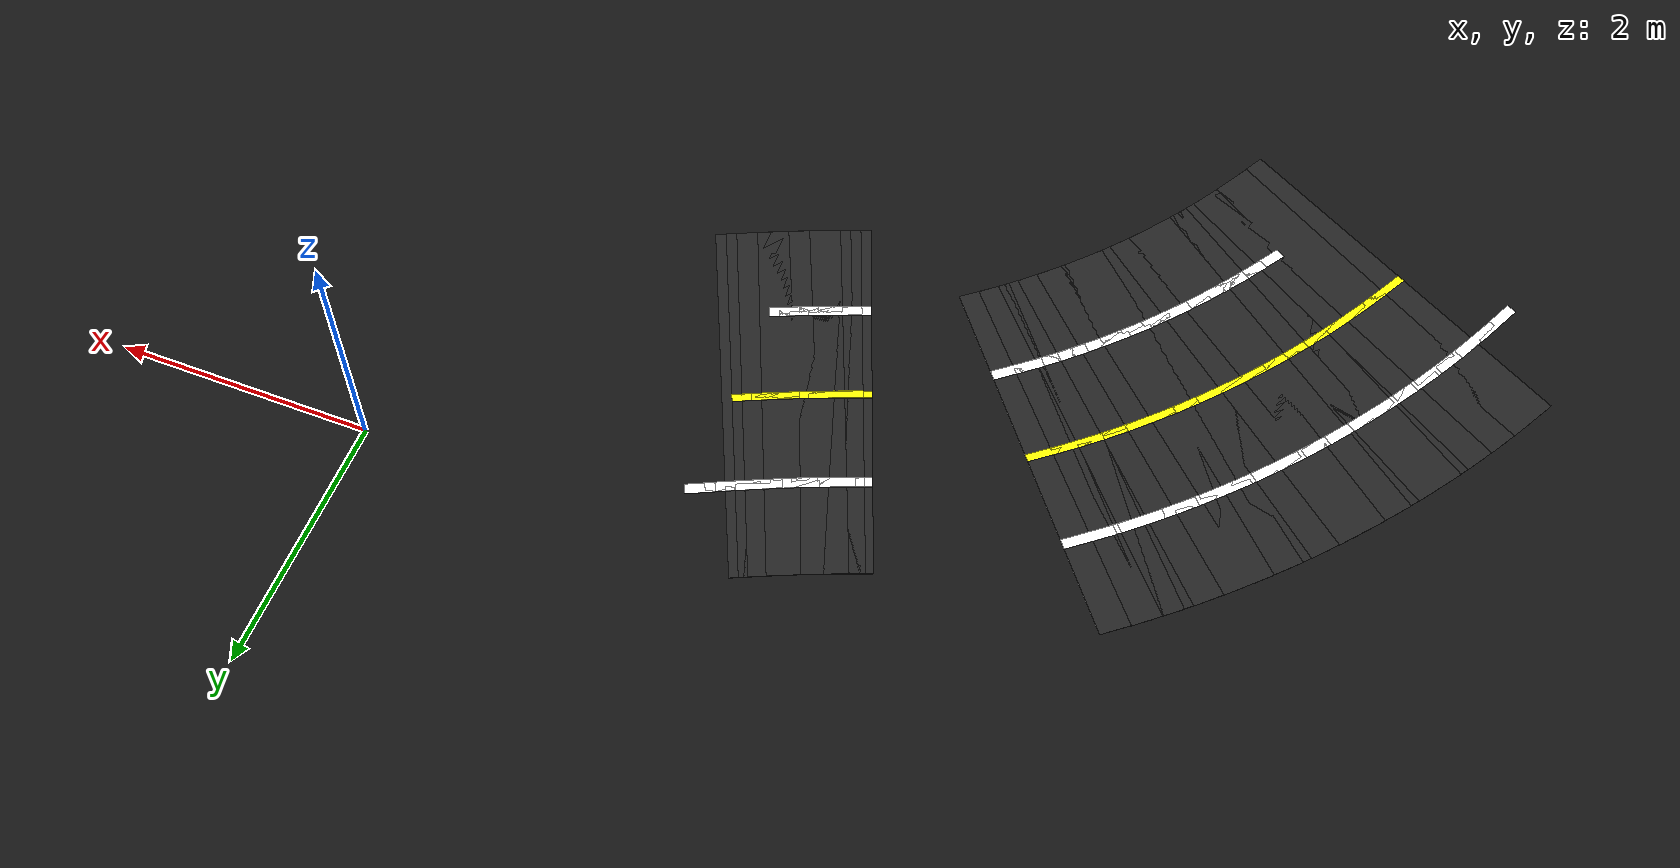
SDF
<sdf version="1.6">
 <world name="figure8_world">
  <model name="ground_plane">
   <static>true</static>
   <link name="link">
    <collision name="collision">
     <geometry><plane><normal>0 0 1</normal><size>120 120</size></plane></geometry>
    </collision>
    <visual name="visual">
     <geometry><plane><normal>0 0 1</normal><size>120 120</size></plane></geometry>
     <material><ambient>0.08 0.08 0.08 1</ambient><diffuse>0.08 0.08 0.08 1</diffuse></material>
    </visual>
   </link>
  </model>
  <model name="seg_01305">
   <static>true</static>
   <pose>-7.4463 -3.9483 0.0030 0 0 1.1257</pose>
   <link name="link">
    <collision name="collision"><geometry><box><size>0.4000 0.0800 0.002</size></box></geometry></collision>
    <visual name="visual">
     <geometry><box><size>0.4000 0.0800 0.002</size></box></geometry>
     <material><ambient>1 1 1 1</ambient><diffuse>1 1 1 1</diffuse></material>
    </visual>
   </link>
  </model>
  <model name="seg_01309">
   <static>true</static>
   <pose>-7.3508 -3.7546 0.0030 0 0 1.0996</pose>
   <link name="link">
    <collision name="collision"><geometry><box><size>0.4000 0.0800 0.002</size></box></geometry></collision>
    <visual name="visual">
     <geometry><box><size>0.4000 0.0800 0.002</size></box></geometry>
     <material><ambient>1 1 1 1</ambient><diffuse>1 1 1 1</diffuse></material>
    </visual>
   </link>
  </model>
  <model name="seg_01312">
   <static>true</static>
   <pose>-6.5911 -3.9213 0.0010 0 0 1.0734</pose>
   <link name="link">
    <collision name="collision"><geometry><box><size>0.4000 3.0000 0.002</size></box></geometry></collision>
    <visual name="visual">
     <geometry><box><size>0.4000 3.0000 0.002</size></box></geometry>
     <material><ambient>0.14 0.14 0.14 1</ambient><diffuse>0.14 0.14 0.14 1</diffuse></material>
    </visual>
   </link>
  </model>
  <model name="seg_01313">
   <static>true</static>
   <pose>-7.2502 -3.5634 0.0030 0 0 1.0734</pose>
   <link name="link">
    <collision name="collision"><geometry><box><size>0.4000 0.0800 0.002</size></box></geometry></collision>
    <visual name="visual">
     <geometry><box><size>0.4000 0.0800 0.002</size></box></geometry>
     <material><ambient>1 1 1 1</ambient><diffuse>1 1 1 1</diffuse></material>
    </visual>
   </link>
  </model>
  <model name="seg_01315">
   <static>true</static>
   <pose>-6.5911 -3.9213 0.0030 0 0 1.0734</pose>
   <link name="link">
    <collision name="collision"><geometry><box><size>0.4000 0.0600 0.002</size></box></geometry></collision>
    <visual name="visual">
     <geometry><box><size>0.4000 0.0600 0.002</size></box></geometry>
     <material><ambient>1 1 0 1</ambient><diffuse>1 1 0 1</diffuse></material>
    </visual>
   </link>
  </model>
  <model name="seg_01316">
   <static>true</static>
   <pose>-6.4952 -3.7500 0.0010 0 0 1.0472</pose>
   <link name="link">
    <collision name="collision"><geometry><box><size>0.4000 3.0000 0.002</size></box></geometry></collision>
    <visual name="visual">
     <geometry><box><size>0.4000 3.0000 0.002</size></box></geometry>
     <material><ambient>0.14 0.14 0.14 1</ambient><diffuse>0.14 0.14 0.14 1</diffuse></material>
    </visual>
   </link>
  </model>
  <model name="seg_01317">
   <static>true</static>
   <pose>-7.1447 -3.3750 0.0030 0 0 1.0472</pose>
   <link name="link">
    <collision name="collision"><geometry><box><size>0.4000 0.0800 0.002</size></box></geometry></collision>
    <visual name="visual">
     <geometry><box><size>0.4000 0.0800 0.002</size></box></geometry>
     <material><ambient>1 1 1 1</ambient><diffuse>1 1 1 1</diffuse></material>
    </visual>
   </link>
  </model>
  <model name="seg_01319">
   <static>true</static>
   <pose>-6.4952 -3.7500 0.0030 0 0 1.0472</pose>
   <link name="link">
    <collision name="collision"><geometry><box><size>0.4000 0.0600 0.002</size></box></geometry></collision>
    <visual name="visual">
     <geometry><box><size>0.4000 0.0600 0.002</size></box></geometry>
     <material><ambient>1 1 0 1</ambient><diffuse>1 1 0 1</diffuse></material>
    </visual>
   </link>
  </model>
  <model name="seg_01320">
   <static>true</static>
   <pose>-6.3948 -3.5813 0.0010 0 0 1.0210</pose>
   <link name="link">
    <collision name="collision"><geometry><box><size>0.4000 3.0000 0.002</size></box></geometry></collision>
    <visual name="visual">
     <geometry><box><size>0.4000 3.0000 0.002</size></box></geometry>
     <material><ambient>0.14 0.14 0.14 1</ambient><diffuse>0.14 0.14 0.14 1</diffuse></material>
    </visual>
   </link>
  </model>
  <model name="seg_01321">
   <static>true</static>
   <pose>-7.0343 -3.1894 0.0030 0 0 1.0210</pose>
   <link name="link">
    <collision name="collision"><geometry><box><size>0.4000 0.0800 0.002</size></box></geometry></collision>
    <visual name="visual">
     <geometry><box><size>0.4000 0.0800 0.002</size></box></geometry>
     <material><ambient>1 1 1 1</ambient><diffuse>1 1 1 1</diffuse></material>
    </visual>
   </link>
  </model>
  <model name="seg_01323">
   <static>true</static>
   <pose>-6.3948 -3.5813 0.0030 0 0 1.0210</pose>
   <link name="link">
    <collision name="collision"><geometry><box><size>0.4000 0.0600 0.002</size></box></geometry></collision>
    <visual name="visual">
     <geometry><box><size>0.4000 0.0600 0.002</size></box></geometry>
     <material><ambient>1 1 0 1</ambient><diffuse>1 1 0 1</diffuse></material>
    </visual>
   </link>
  </model>
  <model name="seg_01324">
   <static>true</static>
   <pose>-6.2900 -3.4152 0.0010 0 0 0.9948</pose>
   <link name="link">
    <collision name="collision"><geometry><box><size>0.4000 3.0000 0.002</size></box></geometry></collision>
    <visual name="visual">
     <geometry><box><size>0.4000 3.0000 0.002</size></box></geometry>
     <material><ambient>0.14 0.14 0.14 1</ambient><diffuse>0.14 0.14 0.14 1</diffuse></material>
    </visual>
   </link>
  </model>
  <model name="seg_01325">
   <static>true</static>
   <pose>-6.9190 -3.0067 0.0030 0 0 0.9948</pose>
   <link name="link">
    <collision name="collision"><geometry><box><size>0.4000 0.0800 0.002</size></box></geometry></collision>
    <visual name="visual">
     <geometry><box><size>0.4000 0.0800 0.002</size></box></geometry>
     <material><ambient>1 1 1 1</ambient><diffuse>1 1 1 1</diffuse></material>
    </visual>
   </link>
  </model>
  <model name="seg_01326">
   <static>true</static>
   <pose>-5.6610 -3.8237 0.0030 0 0 0.9948</pose>
   <link name="link">
    <collision name="collision"><geometry><box><size>0.4000 0.0800 0.002</size></box></geometry></collision>
    <visual name="visual">
     <geometry><box><size>0.4000 0.0800 0.002</size></box></geometry>
     <material><ambient>1 1 1 1</ambient><diffuse>1 1 1 1</diffuse></material>
    </visual>
   </link>
  </model>
  <model name="seg_01327">
   <static>true</static>
   <pose>-6.2900 -3.4152 0.0030 0 0 0.9948</pose>
   <link name="link">
    <collision name="collision"><geometry><box><size>0.4000 0.0600 0.002</size></box></geometry></collision>
    <visual name="visual">
     <geometry><box><size>0.4000 0.0600 0.002</size></box></geometry>
     <material><ambient>1 1 0 1</ambient><diffuse>1 1 0 1</diffuse></material>
    </visual>
   </link>
  </model>
  <model name="seg_01328">
   <static>true</static>
   <pose>-6.1809 -3.2520 0.0010 0 0 0.9687</pose>
   <link name="link">
    <collision name="collision"><geometry><box><size>0.4000 3.0000 0.002</size></box></geometry></collision>
    <visual name="visual">
     <geometry><box><size>0.4000 3.0000 0.002</size></box></geometry>
     <material><ambient>0.14 0.14 0.14 1</ambient><diffuse>0.14 0.14 0.14 1</diffuse></material>
    </visual>
   </link>
  </model>
  <model name="seg_01329">
   <static>true</static>
   <pose>-6.7990 -2.8271 0.0030 0 0 0.9687</pose>
   <link name="link">
    <collision name="collision"><geometry><box><size>0.4000 0.0800 0.002</size></box></geometry></collision>
    <visual name="visual">
     <geometry><box><size>0.4000 0.0800 0.002</size></box></geometry>
     <material><ambient>1 1 1 1</ambient><diffuse>1 1 1 1</diffuse></material>
    </visual>
   </link>
  </model>
  <model name="seg_01330">
   <static>true</static>
   <pose>-5.5629 -3.6768 0.0030 0 0 0.9687</pose>
   <link name="link">
    <collision name="collision"><geometry><box><size>0.4000 0.0800 0.002</size></box></geometry></collision>
    <visual name="visual">
     <geometry><box><size>0.4000 0.0800 0.002</size></box></geometry>
     <material><ambient>1 1 1 1</ambient><diffuse>1 1 1 1</diffuse></material>
    </visual>
   </link>
  </model>
  <model name="seg_01331">
   <static>true</static>
   <pose>-6.1809 -3.2520 0.0030 0 0 0.9687</pose>
   <link name="link">
    <collision name="collision"><geometry><box><size>0.4000 0.0600 0.002</size></box></geometry></collision>
    <visual name="visual">
     <geometry><box><size>0.4000 0.0600 0.002</size></box></geometry>
     <material><ambient>1 1 0 1</ambient><diffuse>1 1 0 1</diffuse></material>
    </visual>
   </link>
  </model>
  <model name="seg_01332">
   <static>true</static>
   <pose>-6.0676 -3.0916 0.0010 0 0 0.9425</pose>
   <link name="link">
    <collision name="collision"><geometry><box><size>0.4000 3.0000 0.002</size></box></geometry></collision>
    <visual name="visual">
     <geometry><box><size>0.4000 3.0000 0.002</size></box></geometry>
     <material><ambient>0.14 0.14 0.14 1</ambient><diffuse>0.14 0.14 0.14 1</diffuse></material>
    </visual>
   </link>
  </model>
  <model name="seg_01333">
   <static>true</static>
   <pose>-6.6744 -2.6508 0.0030 0 0 0.9425</pose>
   <link name="link">
    <collision name="collision"><geometry><box><size>0.4000 0.0800 0.002</size></box></geometry></collision>
    <visual name="visual">
     <geometry><box><size>0.4000 0.0800 0.002</size></box></geometry>
     <material><ambient>1 1 1 1</ambient><diffuse>1 1 1 1</diffuse></material>
    </visual>
   </link>
  </model>
  <model name="seg_01334">
   <static>true</static>
   <pose>-5.4609 -3.5324 0.0030 0 0 0.9425</pose>
   <link name="link">
    <collision name="collision"><geometry><box><size>0.4000 0.0800 0.002</size></box></geometry></collision>
    <visual name="visual">
     <geometry><box><size>0.4000 0.0800 0.002</size></box></geometry>
     <material><ambient>1 1 1 1</ambient><diffuse>1 1 1 1</diffuse></material>
    </visual>
   </link>
  </model>
  <model name="seg_01335">
   <static>true</static>
   <pose>-6.0676 -3.0916 0.0030 0 0 0.9425</pose>
   <link name="link">
    <collision name="collision"><geometry><box><size>0.4000 0.0600 0.002</size></box></geometry></collision>
    <visual name="visual">
     <geometry><box><size>0.4000 0.0600 0.002</size></box></geometry>
     <material><ambient>1 1 0 1</ambient><diffuse>1 1 0 1</diffuse></material>
    </visual>
   </link>
  </model>
  <model name="seg_01336">
   <static>true</static>
   <pose>-5.9502 -2.9343 0.0010 0 0 0.9163</pose>
   <link name="link">
    <collision name="collision"><geometry><box><size>0.4000 3.0000 0.002</size></box></geometry></collision>
    <visual name="visual">
     <geometry><box><size>0.4000 3.0000 0.002</size></box></geometry>
     <material><ambient>0.14 0.14 0.14 1</ambient><diffuse>0.14 0.14 0.14 1</diffuse></material>
    </visual>
   </link>
  </model>
  <model name="seg_01337">
   <static>true</static>
   <pose>-6.5452 -2.4777 0.0030 0 0 0.9163</pose>
   <link name="link">
    <collision name="collision"><geometry><box><size>0.4000 0.0800 0.002</size></box></geometry></collision>
    <visual name="visual">
     <geometry><box><size>0.4000 0.0800 0.002</size></box></geometry>
     <material><ambient>1 1 1 1</ambient><diffuse>1 1 1 1</diffuse></material>
    </visual>
   </link>
  </model>
  <model name="seg_01338">
   <static>true</static>
   <pose>-5.3551 -3.3909 0.0030 0 0 0.9163</pose>
   <link name="link">
    <collision name="collision"><geometry><box><size>0.4000 0.0800 0.002</size></box></geometry></collision>
    <visual name="visual">
     <geometry><box><size>0.4000 0.0800 0.002</size></box></geometry>
     <material><ambient>1 1 1 1</ambient><diffuse>1 1 1 1</diffuse></material>
    </visual>
   </link>
  </model>
  <model name="seg_01339">
   <static>true</static>
   <pose>-5.9502 -2.9343 0.0030 0 0 0.9163</pose>
   <link name="link">
    <collision name="collision"><geometry><box><size>0.4000 0.0600 0.002</size></box></geometry></collision>
    <visual name="visual">
     <geometry><box><size>0.4000 0.0600 0.002</size></box></geometry>
     <material><ambient>1 1 0 1</ambient><diffuse>1 1 0 1</diffuse></material>
    </visual>
   </link>
  </model>
  <model name="seg_01340">
   <static>true</static>
   <pose>-5.8286 -2.7801 0.0010 0 0 0.8901</pose>
   <link name="link">
    <collision name="collision"><geometry><box><size>0.4000 3.0000 0.002</size></box></geometry></collision>
    <visual name="visual">
     <geometry><box><size>0.4000 3.0000 0.002</size></box></geometry>
     <material><ambient>0.14 0.14 0.14 1</ambient><diffuse>0.14 0.14 0.14 1</diffuse></material>
    </visual>
   </link>
  </model>
  <model name="seg_01341">
   <static>true</static>
   <pose>-6.4115 -2.3081 0.0030 0 0 0.8901</pose>
   <link name="link">
    <collision name="collision"><geometry><box><size>0.4000 0.0800 0.002</size></box></geometry></collision>
    <visual name="visual">
     <geometry><box><size>0.4000 0.0800 0.002</size></box></geometry>
     <material><ambient>1 1 1 1</ambient><diffuse>1 1 1 1</diffuse></material>
    </visual>
   </link>
  </model>
  <model name="seg_01342">
   <static>true</static>
   <pose>-5.2457 -3.2521 0.0030 0 0 0.8901</pose>
   <link name="link">
    <collision name="collision"><geometry><box><size>0.4000 0.0800 0.002</size></box></geometry></collision>
    <visual name="visual">
     <geometry><box><size>0.4000 0.0800 0.002</size></box></geometry>
     <material><ambient>1 1 1 1</ambient><diffuse>1 1 1 1</diffuse></material>
    </visual>
   </link>
  </model>
  <model name="seg_01343">
   <static>true</static>
   <pose>-5.8286 -2.7801 0.0030 0 0 0.8901</pose>
   <link name="link">
    <collision name="collision"><geometry><box><size>0.4000 0.0600 0.002</size></box></geometry></collision>
    <visual name="visual">
     <geometry><box><size>0.4000 0.0600 0.002</size></box></geometry>
     <material><ambient>1 1 0 1</ambient><diffuse>1 1 0 1</diffuse></material>
    </visual>
   </link>
  </model>
  <model name="seg_01344">
   <static>true</static>
   <pose>-5.7030 -2.6291 0.0010 0 0 0.8639</pose>
   <link name="link">
    <collision name="collision"><geometry><box><size>0.4000 3.0000 0.002</size></box></geometry></collision>
    <visual name="visual">
     <geometry><box><size>0.4000 3.0000 0.002</size></box></geometry>
     <material><ambient>0.14 0.14 0.14 1</ambient><diffuse>0.14 0.14 0.14 1</diffuse></material>
    </visual>
   </link>
  </model>
  <model name="seg_01345">
   <static>true</static>
   <pose>-6.2733 -2.1421 0.0030 0 0 0.8639</pose>
   <link name="link">
    <collision name="collision"><geometry><box><size>0.4000 0.0800 0.002</size></box></geometry></collision>
    <visual name="visual">
     <geometry><box><size>0.4000 0.0800 0.002</size></box></geometry>
     <material><ambient>1 1 1 1</ambient><diffuse>1 1 1 1</diffuse></material>
    </visual>
   </link>
  </model>
  <model name="seg_01346">
   <static>true</static>
   <pose>-5.1327 -3.1162 0.0030 0 0 0.8639</pose>
   <link name="link">
    <collision name="collision"><geometry><box><size>0.4000 0.0800 0.002</size></box></geometry></collision>
    <visual name="visual">
     <geometry><box><size>0.4000 0.0800 0.002</size></box></geometry>
     <material><ambient>1 1 1 1</ambient><diffuse>1 1 1 1</diffuse></material>
    </visual>
   </link>
  </model>
  <model name="seg_01347">
   <static>true</static>
   <pose>-5.7030 -2.6291 0.0030 0 0 0.8639</pose>
   <link name="link">
    <collision name="collision"><geometry><box><size>0.4000 0.0600 0.002</size></box></geometry></collision>
    <visual name="visual">
     <geometry><box><size>0.4000 0.0600 0.002</size></box></geometry>
     <material><ambient>1 1 0 1</ambient><diffuse>1 1 0 1</diffuse></material>
    </visual>
   </link>
  </model>
  <model name="seg_01348">
   <static>true</static>
   <pose>-5.5736 -2.4815 0.0010 0 0 0.8378</pose>
   <link name="link">
    <collision name="collision"><geometry><box><size>0.4000 3.0000 0.002</size></box></geometry></collision>
    <visual name="visual">
     <geometry><box><size>0.4000 3.0000 0.002</size></box></geometry>
     <material><ambient>0.14 0.14 0.14 1</ambient><diffuse>0.14 0.14 0.14 1</diffuse></material>
    </visual>
   </link>
  </model>
  <model name="seg_01349">
   <static>true</static>
   <pose>-6.1309 -1.9797 0.0030 0 0 0.8378</pose>
   <link name="link">
    <collision name="collision"><geometry><box><size>0.4000 0.0800 0.002</size></box></geometry></collision>
    <visual name="visual">
     <geometry><box><size>0.4000 0.0800 0.002</size></box></geometry>
     <material><ambient>1 1 1 1</ambient><diffuse>1 1 1 1</diffuse></material>
    </visual>
   </link>
  </model>
  <model name="seg_01350">
   <static>true</static>
   <pose>-5.0162 -2.9834 0.0030 0 0 0.8378</pose>
   <link name="link">
    <collision name="collision"><geometry><box><size>0.4000 0.0800 0.002</size></box></geometry></collision>
    <visual name="visual">
     <geometry><box><size>0.4000 0.0800 0.002</size></box></geometry>
     <material><ambient>1 1 1 1</ambient><diffuse>1 1 1 1</diffuse></material>
    </visual>
   </link>
  </model>
  <model name="seg_01351">
   <static>true</static>
   <pose>-5.5736 -2.4815 0.0030 0 0 0.8378</pose>
   <link name="link">
    <collision name="collision"><geometry><box><size>0.4000 0.0600 0.002</size></box></geometry></collision>
    <visual name="visual">
     <geometry><box><size>0.4000 0.0600 0.002</size></box></geometry>
     <material><ambient>1 1 0 1</ambient><diffuse>1 1 0 1</diffuse></material>
    </visual>
   </link>
  </model>
  <model name="seg_01352">
   <static>true</static>
   <pose>-5.4403 -2.3373 0.0010 0 0 0.8116</pose>
   <link name="link">
    <collision name="collision"><geometry><box><size>0.4000 3.0000 0.002</size></box></geometry></collision>
    <visual name="visual">
     <geometry><box><size>0.4000 3.0000 0.002</size></box></geometry>
     <material><ambient>0.14 0.14 0.14 1</ambient><diffuse>0.14 0.14 0.14 1</diffuse></material>
    </visual>
   </link>
  </model>
  <model name="seg_01353">
   <static>true</static>
   <pose>-5.9843 -1.8211 0.0030 0 0 0.8116</pose>
   <link name="link">
    <collision name="collision"><geometry><box><size>0.4000 0.0800 0.002</size></box></geometry></collision>
    <visual name="visual">
     <geometry><box><size>0.4000 0.0800 0.002</size></box></geometry>
     <material><ambient>1 1 1 1</ambient><diffuse>1 1 1 1</diffuse></material>
    </visual>
   </link>
  </model>
  <model name="seg_01354">
   <static>true</static>
   <pose>-4.8963 -2.8536 0.0030 0 0 0.8116</pose>
   <link name="link">
    <collision name="collision"><geometry><box><size>0.4000 0.0800 0.002</size></box></geometry></collision>
    <visual name="visual">
     <geometry><box><size>0.4000 0.0800 0.002</size></box></geometry>
     <material><ambient>1 1 1 1</ambient><diffuse>1 1 1 1</diffuse></material>
    </visual>
   </link>
  </model>
  <model name="seg_01355">
   <static>true</static>
   <pose>-5.4403 -2.3373 0.0030 0 0 0.8116</pose>
   <link name="link">
    <collision name="collision"><geometry><box><size>0.4000 0.0600 0.002</size></box></geometry></collision>
    <visual name="visual">
     <geometry><box><size>0.4000 0.0600 0.002</size></box></geometry>
     <material><ambient>1 1 0 1</ambient><diffuse>1 1 0 1</diffuse></material>
    </visual>
   </link>
  </model>
  <model name="seg_01356">
   <static>true</static>
   <pose>-5.3033 -2.1967 0.0010 0 0 0.7854</pose>
   <link name="link">
    <collision name="collision"><geometry><box><size>0.4000 3.0000 0.002</size></box></geometry></collision>
    <visual name="visual">
     <geometry><box><size>0.4000 3.0000 0.002</size></box></geometry>
     <material><ambient>0.14 0.14 0.14 1</ambient><diffuse>0.14 0.14 0.14 1</diffuse></material>
    </visual>
   </link>
  </model>
  <model name="seg_01357">
   <static>true</static>
   <pose>-5.8336 -1.6664 0.0030 0 0 0.7854</pose>
   <link name="link">
    <collision name="collision"><geometry><box><size>0.4000 0.0800 0.002</size></box></geometry></collision>
    <visual name="visual">
     <geometry><box><size>0.4000 0.0800 0.002</size></box></geometry>
     <material><ambient>1 1 1 1</ambient><diffuse>1 1 1 1</diffuse></material>
    </visual>
   </link>
  </model>
  <model name="seg_01358">
   <static>true</static>
   <pose>-4.7730 -2.7270 0.0030 0 0 0.7854</pose>
   <link name="link">
    <collision name="collision"><geometry><box><size>0.4000 0.0800 0.002</size></box></geometry></collision>
    <visual name="visual">
     <geometry><box><size>0.4000 0.0800 0.002</size></box></geometry>
     <material><ambient>1 1 1 1</ambient><diffuse>1 1 1 1</diffuse></material>
    </visual>
   </link>
  </model>
  <model name="seg_01359">
   <static>true</static>
   <pose>-5.3033 -2.1967 0.0030 0 0 0.7854</pose>
   <link name="link">
    <collision name="collision"><geometry><box><size>0.4000 0.0600 0.002</size></box></geometry></collision>
    <visual name="visual">
     <geometry><box><size>0.4000 0.0600 0.002</size></box></geometry>
     <material><ambient>1 1 0 1</ambient><diffuse>1 1 0 1</diffuse></material>
    </visual>
   </link>
  </model>
  <model name="seg_01360">
   <static>true</static>
   <pose>-5.1627 -2.0597 0.0010 0 0 0.7592</pose>
   <link name="link">
    <collision name="collision"><geometry><box><size>0.4000 3.0000 0.002</size></box></geometry></collision>
    <visual name="visual">
     <geometry><box><size>0.4000 3.0000 0.002</size></box></geometry>
     <material><ambient>0.14 0.14 0.14 1</ambient><diffuse>0.14 0.14 0.14 1</diffuse></material>
    </visual>
   </link>
  </model>
  <model name="seg_01361">
   <static>true</static>
   <pose>-5.6789 -1.5157 0.0030 0 0 0.7592</pose>
   <link name="link">
    <collision name="collision"><geometry><box><size>0.4000 0.0800 0.002</size></box></geometry></collision>
    <visual name="visual">
     <geometry><box><size>0.4000 0.0800 0.002</size></box></geometry>
     <material><ambient>1 1 1 1</ambient><diffuse>1 1 1 1</diffuse></material>
    </visual>
   </link>
  </model>
  <model name="seg_01362">
   <static>true</static>
   <pose>-4.6464 -2.6037 0.0030 0 0 0.7592</pose>
   <link name="link">
    <collision name="collision"><geometry><box><size>0.4000 0.0800 0.002</size></box></geometry></collision>
    <visual name="visual">
     <geometry><box><size>0.4000 0.0800 0.002</size></box></geometry>
     <material><ambient>1 1 1 1</ambient><diffuse>1 1 1 1</diffuse></material>
    </visual>
   </link>
  </model>
  <model name="seg_01363">
   <static>true</static>
   <pose>-5.1627 -2.0597 0.0030 0 0 0.7592</pose>
   <link name="link">
    <collision name="collision"><geometry><box><size>0.4000 0.0600 0.002</size></box></geometry></collision>
    <visual name="visual">
     <geometry><box><size>0.4000 0.0600 0.002</size></box></geometry>
     <material><ambient>1 1 0 1</ambient><diffuse>1 1 0 1</diffuse></material>
    </visual>
   </link>
  </model>
  <model name="seg_01364">
   <static>true</static>
   <pose>-5.0185 -1.9264 0.0010 0 0 0.7330</pose>
   <link name="link">
    <collision name="collision"><geometry><box><size>0.4000 3.0000 0.002</size></box></geometry></collision>
    <visual name="visual">
     <geometry><box><size>0.4000 3.0000 0.002</size></box></geometry>
     <material><ambient>0.14 0.14 0.14 1</ambient><diffuse>0.14 0.14 0.14 1</diffuse></material>
    </visual>
   </link>
  </model>
  <model name="seg_01365">
   <static>true</static>
   <pose>-5.5203 -1.3691 0.0030 0 0 0.7330</pose>
   <link name="link">
    <collision name="collision"><geometry><box><size>0.4000 0.0800 0.002</size></box></geometry></collision>
    <visual name="visual">
     <geometry><box><size>0.4000 0.0800 0.002</size></box></geometry>
     <material><ambient>1 1 1 1</ambient><diffuse>1 1 1 1</diffuse></material>
    </visual>
   </link>
  </model>
  <model name="seg_01366">
   <static>true</static>
   <pose>-4.5166 -2.4838 0.0030 0 0 0.7330</pose>
   <link name="link">
    <collision name="collision"><geometry><box><size>0.4000 0.0800 0.002</size></box></geometry></collision>
    <visual name="visual">
     <geometry><box><size>0.4000 0.0800 0.002</size></box></geometry>
     <material><ambient>1 1 1 1</ambient><diffuse>1 1 1 1</diffuse></material>
    </visual>
   </link>
  </model>
  <model name="seg_01367">
   <static>true</static>
   <pose>-5.0185 -1.9264 0.0030 0 0 0.7330</pose>
   <link name="link">
    <collision name="collision"><geometry><box><size>0.4000 0.0600 0.002</size></box></geometry></collision>
    <visual name="visual">
     <geometry><box><size>0.4000 0.0600 0.002</size></box></geometry>
     <material><ambient>1 1 0 1</ambient><diffuse>1 1 0 1</diffuse></material>
    </visual>
   </link>
  </model>
  <model name="seg_01368">
   <static>true</static>
   <pose>-4.8709 -1.7970 0.0010 0 0 0.7069</pose>
   <link name="link">
    <collision name="collision"><geometry><box><size>0.4000 3.0000 0.002</size></box></geometry></collision>
    <visual name="visual">
     <geometry><box><size>0.4000 3.0000 0.002</size></box></geometry>
     <material><ambient>0.14 0.14 0.14 1</ambient><diffuse>0.14 0.14 0.14 1</diffuse></material>
    </visual>
   </link>
  </model>
  <model name="seg_01369">
   <static>true</static>
   <pose>-5.3579 -1.2267 0.0030 0 0 0.7069</pose>
   <link name="link">
    <collision name="collision"><geometry><box><size>0.4000 0.0800 0.002</size></box></geometry></collision>
    <visual name="visual">
     <geometry><box><size>0.4000 0.0800 0.002</size></box></geometry>
     <material><ambient>1 1 1 1</ambient><diffuse>1 1 1 1</diffuse></material>
    </visual>
   </link>
  </model>
  <model name="seg_01370">
   <static>true</static>
   <pose>-4.3838 -2.3673 0.0030 0 0 0.7069</pose>
   <link name="link">
    <collision name="collision"><geometry><box><size>0.4000 0.0800 0.002</size></box></geometry></collision>
    <visual name="visual">
     <geometry><box><size>0.4000 0.0800 0.002</size></box></geometry>
     <material><ambient>1 1 1 1</ambient><diffuse>1 1 1 1</diffuse></material>
    </visual>
   </link>
  </model>
  <model name="seg_01371">
   <static>true</static>
   <pose>-4.8709 -1.7970 0.0030 0 0 0.7069</pose>
   <link name="link">
    <collision name="collision"><geometry><box><size>0.4000 0.0600 0.002</size></box></geometry></collision>
    <visual name="visual">
     <geometry><box><size>0.4000 0.0600 0.002</size></box></geometry>
     <material><ambient>1 1 0 1</ambient><diffuse>1 1 0 1</diffuse></material>
    </visual>
   </link>
  </model>
  <model name="seg_01372">
   <static>true</static>
   <pose>-4.7199 -1.6714 0.0010 0 0 0.6807</pose>
   <link name="link">
    <collision name="collision"><geometry><box><size>0.4000 3.0000 0.002</size></box></geometry></collision>
    <visual name="visual">
     <geometry><box><size>0.4000 3.0000 0.002</size></box></geometry>
     <material><ambient>0.14 0.14 0.14 1</ambient><diffuse>0.14 0.14 0.14 1</diffuse></material>
    </visual>
   </link>
  </model>
  <model name="seg_01373">
   <static>true</static>
   <pose>-5.1919 -1.0885 0.0030 0 0 0.6807</pose>
   <link name="link">
    <collision name="collision"><geometry><box><size>0.4000 0.0800 0.002</size></box></geometry></collision>
    <visual name="visual">
     <geometry><box><size>0.4000 0.0800 0.002</size></box></geometry>
     <material><ambient>1 1 1 1</ambient><diffuse>1 1 1 1</diffuse></material>
    </visual>
   </link>
  </model>
  <model name="seg_01374">
   <static>true</static>
   <pose>-4.2479 -2.2543 0.0030 0 0 0.6807</pose>
   <link name="link">
    <collision name="collision"><geometry><box><size>0.4000 0.0800 0.002</size></box></geometry></collision>
    <visual name="visual">
     <geometry><box><size>0.4000 0.0800 0.002</size></box></geometry>
     <material><ambient>1 1 1 1</ambient><diffuse>1 1 1 1</diffuse></material>
    </visual>
   </link>
  </model>
  <model name="seg_01375">
   <static>true</static>
   <pose>-4.7199 -1.6714 0.0030 0 0 0.6807</pose>
   <link name="link">
    <collision name="collision"><geometry><box><size>0.4000 0.0600 0.002</size></box></geometry></collision>
    <visual name="visual">
     <geometry><box><size>0.4000 0.0600 0.002</size></box></geometry>
     <material><ambient>1 1 0 1</ambient><diffuse>1 1 0 1</diffuse></material>
    </visual>
   </link>
  </model>
  <model name="seg_01868">
   <static>true</static>
   <pose>-3.1389 -1.5760 0.0010 0 0 0.3747</pose>
   <link name="link">
    <collision name="collision"><geometry><box><size>0.4000 3.0000 0.002</size></box></geometry></collision>
    <visual name="visual">
     <geometry><box><size>0.4000 3.0000 0.002</size></box></geometry>
     <material><ambient>0.14 0.14 0.14 1</ambient><diffuse>0.14 0.14 0.14 1</diffuse></material>
    </visual>
   </link>
  </model>
  <model name="seg_01869">
   <static>true</static>
   <pose>-3.4134 -0.8780 0.0030 0 0 0.3747</pose>
   <link name="link">
    <collision name="collision"><geometry><box><size>0.4000 0.0800 0.002</size></box></geometry></collision>
    <visual name="visual">
     <geometry><box><size>0.4000 0.0800 0.002</size></box></geometry>
     <material><ambient>1 1 1 1</ambient><diffuse>1 1 1 1</diffuse></material>
    </visual>
   </link>
  </model>
  <model name="seg_01870">
   <static>true</static>
   <pose>-2.8645 -2.2740 0.0030 0 0 0.3747</pose>
   <link name="link">
    <collision name="collision"><geometry><box><size>0.4000 0.0800 0.002</size></box></geometry></collision>
    <visual name="visual">
     <geometry><box><size>0.4000 0.0800 0.002</size></box></geometry>
     <material><ambient>1 1 1 1</ambient><diffuse>1 1 1 1</diffuse></material>
    </visual>
   </link>
  </model>
  <model name="seg_01871">
   <static>true</static>
   <pose>-3.1389 -1.5760 0.0030 0 0 0.3747</pose>
   <link name="link">
    <collision name="collision"><geometry><box><size>0.4000 0.0600 0.002</size></box></geometry></collision>
    <visual name="visual">
     <geometry><box><size>0.4000 0.0600 0.002</size></box></geometry>
     <material><ambient>1 1 0 1</ambient><diffuse>1 1 0 1</diffuse></material>
    </visual>
   </link>
  </model>
  <model name="seg_01872">
   <static>true</static>
   <pose>-3.0772 -1.5512 0.0010 0 0 0.3820</pose>
   <link name="link">
    <collision name="collision"><geometry><box><size>0.4000 3.0000 0.002</size></box></geometry></collision>
    <visual name="visual">
     <geometry><box><size>0.4000 3.0000 0.002</size></box></geometry>
     <material><ambient>0.14 0.14 0.14 1</ambient><diffuse>0.14 0.14 0.14 1</diffuse></material>
    </visual>
   </link>
  </model>
  <model name="seg_01873">
   <static>true</static>
   <pose>-3.3567 -0.8552 0.0030 0 0 0.3820</pose>
   <link name="link">
    <collision name="collision"><geometry><box><size>0.4000 0.0800 0.002</size></box></geometry></collision>
    <visual name="visual">
     <geometry><box><size>0.4000 0.0800 0.002</size></box></geometry>
     <material><ambient>1 1 1 1</ambient><diffuse>1 1 1 1</diffuse></material>
    </visual>
   </link>
  </model>
  <model name="seg_01874">
   <static>true</static>
   <pose>-2.7976 -2.2471 0.0030 0 0 0.3820</pose>
   <link name="link">
    <collision name="collision"><geometry><box><size>0.4000 0.0800 0.002</size></box></geometry></collision>
    <visual name="visual">
     <geometry><box><size>0.4000 0.0800 0.002</size></box></geometry>
     <material><ambient>1 1 1 1</ambient><diffuse>1 1 1 1</diffuse></material>
    </visual>
   </link>
  </model>
  <model name="seg_01875">
   <static>true</static>
   <pose>-3.0772 -1.5512 0.0030 0 0 0.3820</pose>
   <link name="link">
    <collision name="collision"><geometry><box><size>0.4000 0.0600 0.002</size></box></geometry></collision>
    <visual name="visual">
     <geometry><box><size>0.4000 0.0600 0.002</size></box></geometry>
     <material><ambient>1 1 0 1</ambient><diffuse>1 1 0 1</diffuse></material>
    </visual>
   </link>
  </model>
  <model name="seg_01876">
   <static>true</static>
   <pose>-3.0146 -1.5255 0.0010 0 0 0.3889</pose>
   <link name="link">
    <collision name="collision"><geometry><box><size>0.4000 3.0000 0.002</size></box></geometry></collision>
    <visual name="visual">
     <geometry><box><size>0.4000 3.0000 0.002</size></box></geometry>
     <material><ambient>0.14 0.14 0.14 1</ambient><diffuse>0.14 0.14 0.14 1</diffuse></material>
    </visual>
   </link>
  </model>
  <model name="seg_01877">
   <static>true</static>
   <pose>-3.2991 -0.8316 0.0030 0 0 0.3889</pose>
   <link name="link">
    <collision name="collision"><geometry><box><size>0.4000 0.0800 0.002</size></box></geometry></collision>
    <visual name="visual">
     <geometry><box><size>0.4000 0.0800 0.002</size></box></geometry>
     <material><ambient>1 1 1 1</ambient><diffuse>1 1 1 1</diffuse></material>
    </visual>
   </link>
  </model>
  <model name="seg_01878">
   <static>true</static>
   <pose>-2.7302 -2.2195 0.0030 0 0 0.3889</pose>
   <link name="link">
    <collision name="collision"><geometry><box><size>0.4000 0.0800 0.002</size></box></geometry></collision>
    <visual name="visual">
     <geometry><box><size>0.4000 0.0800 0.002</size></box></geometry>
     <material><ambient>1 1 1 1</ambient><diffuse>1 1 1 1</diffuse></material>
    </visual>
   </link>
  </model>
  <model name="seg_01879">
   <static>true</static>
   <pose>-3.0146 -1.5255 0.0030 0 0 0.3889</pose>
   <link name="link">
    <collision name="collision"><geometry><box><size>0.4000 0.0600 0.002</size></box></geometry></collision>
    <visual name="visual">
     <geometry><box><size>0.4000 0.0600 0.002</size></box></geometry>
     <material><ambient>1 1 0 1</ambient><diffuse>1 1 0 1</diffuse></material>
    </visual>
   </link>
  </model>
  <model name="seg_01880">
   <static>true</static>
   <pose>-2.9514 -1.4992 0.0010 0 0 0.3955</pose>
   <link name="link">
    <collision name="collision"><geometry><box><size>0.4000 3.0000 0.002</size></box></geometry></collision>
    <visual name="visual">
     <geometry><box><size>0.4000 3.0000 0.002</size></box></geometry>
     <material><ambient>0.14 0.14 0.14 1</ambient><diffuse>0.14 0.14 0.14 1</diffuse></material>
    </visual>
   </link>
  </model>
  <model name="seg_01881">
   <static>true</static>
   <pose>-3.2404 -0.8071 0.0030 0 0 0.3955</pose>
   <link name="link">
    <collision name="collision"><geometry><box><size>0.4000 0.0800 0.002</size></box></geometry></collision>
    <visual name="visual">
     <geometry><box><size>0.4000 0.0800 0.002</size></box></geometry>
     <material><ambient>1 1 1 1</ambient><diffuse>1 1 1 1</diffuse></material>
    </visual>
   </link>
  </model>
  <model name="seg_01882">
   <static>true</static>
   <pose>-2.6625 -2.1912 0.0030 0 0 0.3955</pose>
   <link name="link">
    <collision name="collision"><geometry><box><size>0.4000 0.0800 0.002</size></box></geometry></collision>
    <visual name="visual">
     <geometry><box><size>0.4000 0.0800 0.002</size></box></geometry>
     <material><ambient>1 1 1 1</ambient><diffuse>1 1 1 1</diffuse></material>
    </visual>
   </link>
  </model>
  <model name="seg_01883">
   <static>true</static>
   <pose>-2.9514 -1.4992 0.0030 0 0 0.3955</pose>
   <link name="link">
    <collision name="collision"><geometry><box><size>0.4000 0.0600 0.002</size></box></geometry></collision>
    <visual name="visual">
     <geometry><box><size>0.4000 0.0600 0.002</size></box></geometry>
     <material><ambient>1 1 0 1</ambient><diffuse>1 1 0 1</diffuse></material>
    </visual>
   </link>
  </model>
  <model name="seg_01884">
   <static>true</static>
   <pose>-2.8875 -1.4720 0.0010 0 0 0.4018</pose>
   <link name="link">
    <collision name="collision"><geometry><box><size>0.4000 3.0000 0.002</size></box></geometry></collision>
    <visual name="visual">
     <geometry><box><size>0.4000 3.0000 0.002</size></box></geometry>
     <material><ambient>0.14 0.14 0.14 1</ambient><diffuse>0.14 0.14 0.14 1</diffuse></material>
    </visual>
   </link>
  </model>
  <model name="seg_01885">
   <static>true</static>
   <pose>-3.1808 -0.7817 0.0030 0 0 0.4018</pose>
   <link name="link">
    <collision name="collision"><geometry><box><size>0.4000 0.0800 0.002</size></box></geometry></collision>
    <visual name="visual">
     <geometry><box><size>0.4000 0.0800 0.002</size></box></geometry>
     <material><ambient>1 1 1 1</ambient><diffuse>1 1 1 1</diffuse></material>
    </visual>
   </link>
  </model>
  <model name="seg_01886">
   <static>true</static>
   <pose>-2.5942 -2.1623 0.0030 0 0 0.4018</pose>
   <link name="link">
    <collision name="collision"><geometry><box><size>0.4000 0.0800 0.002</size></box></geometry></collision>
    <visual name="visual">
     <geometry><box><size>0.4000 0.0800 0.002</size></box></geometry>
     <material><ambient>1 1 1 1</ambient><diffuse>1 1 1 1</diffuse></material>
    </visual>
   </link>
  </model>
  <model name="seg_01887">
   <static>true</static>
   <pose>-2.8875 -1.4720 0.0030 0 0 0.4018</pose>
   <link name="link">
    <collision name="collision"><geometry><box><size>0.4000 0.0600 0.002</size></box></geometry></collision>
    <visual name="visual">
     <geometry><box><size>0.4000 0.0600 0.002</size></box></geometry>
     <material><ambient>1 1 0 1</ambient><diffuse>1 1 0 1</diffuse></material>
    </visual>
   </link>
  </model>
  <model name="seg_01888">
   <static>true</static>
   <pose>-2.8229 -1.4441 0.0010 0 0 0.4077</pose>
   <link name="link">
    <collision name="collision"><geometry><box><size>0.4000 3.0000 0.002</size></box></geometry></collision>
    <visual name="visual">
     <geometry><box><size>0.4000 3.0000 0.002</size></box></geometry>
     <material><ambient>0.14 0.14 0.14 1</ambient><diffuse>0.14 0.14 0.14 1</diffuse></material>
    </visual>
   </link>
  </model>
  <model name="seg_01889">
   <static>true</static>
   <pose>-3.1203 -0.7556 0.0030 0 0 0.4077</pose>
   <link name="link">
    <collision name="collision"><geometry><box><size>0.4000 0.0800 0.002</size></box></geometry></collision>
    <visual name="visual">
     <geometry><box><size>0.4000 0.0800 0.002</size></box></geometry>
     <material><ambient>1 1 1 1</ambient><diffuse>1 1 1 1</diffuse></material>
    </visual>
   </link>
  </model>
  <model name="seg_01890">
   <static>true</static>
   <pose>-2.5255 -2.1326 0.0030 0 0 0.4077</pose>
   <link name="link">
    <collision name="collision"><geometry><box><size>0.4000 0.0800 0.002</size></box></geometry></collision>
    <visual name="visual">
     <geometry><box><size>0.4000 0.0800 0.002</size></box></geometry>
     <material><ambient>1 1 1 1</ambient><diffuse>1 1 1 1</diffuse></material>
    </visual>
   </link>
  </model>
  <model name="seg_01891">
   <static>true</static>
   <pose>-2.8229 -1.4441 0.0030 0 0 0.4077</pose>
   <link name="link">
    <collision name="collision"><geometry><box><size>0.4000 0.0600 0.002</size></box></geometry></collision>
    <visual name="visual">
     <geometry><box><size>0.4000 0.0600 0.002</size></box></geometry>
     <material><ambient>1 1 0 1</ambient><diffuse>1 1 0 1</diffuse></material>
    </visual>
   </link>
  </model>
  <model name="seg_01892">
   <static>true</static>
   <pose>-2.7577 -1.4155 0.0010 0 0 0.4134</pose>
   <link name="link">
    <collision name="collision"><geometry><box><size>0.4000 3.0000 0.002</size></box></geometry></collision>
    <visual name="visual">
     <geometry><box><size>0.4000 3.0000 0.002</size></box></geometry>
     <material><ambient>0.14 0.14 0.14 1</ambient><diffuse>0.14 0.14 0.14 1</diffuse></material>
    </visual>
   </link>
  </model>
  <model name="seg_01893">
   <static>true</static>
   <pose>-3.0590 -0.7287 0.0030 0 0 0.4134</pose>
   <link name="link">
    <collision name="collision"><geometry><box><size>0.4000 0.0800 0.002</size></box></geometry></collision>
    <visual name="visual">
     <geometry><box><size>0.4000 0.0800 0.002</size></box></geometry>
     <material><ambient>1 1 1 1</ambient><diffuse>1 1 1 1</diffuse></material>
    </visual>
   </link>
  </model>
  <model name="seg_01895">
   <static>true</static>
   <pose>-2.7577 -1.4155 0.0030 0 0 0.4134</pose>
   <link name="link">
    <collision name="collision"><geometry><box><size>0.4000 0.0600 0.002</size></box></geometry></collision>
    <visual name="visual">
     <geometry><box><size>0.4000 0.0600 0.002</size></box></geometry>
     <material><ambient>1 1 0 1</ambient><diffuse>1 1 0 1</diffuse></material>
    </visual>
   </link>
  </model>
  <model name="seg_01896">
   <static>true</static>
   <pose>-2.6918 -1.3862 0.0010 0 0 0.4187</pose>
   <link name="link">
    <collision name="collision"><geometry><box><size>0.4000 3.0000 0.002</size></box></geometry></collision>
    <visual name="visual">
     <geometry><box><size>0.4000 3.0000 0.002</size></box></geometry>
     <material><ambient>0.14 0.14 0.14 1</ambient><diffuse>0.14 0.14 0.14 1</diffuse></material>
    </visual>
   </link>
  </model>
  <model name="seg_01897">
   <static>true</static>
   <pose>-2.9968 -0.7010 0.0030 0 0 0.4187</pose>
   <link name="link">
    <collision name="collision"><geometry><box><size>0.4000 0.0800 0.002</size></box></geometry></collision>
    <visual name="visual">
     <geometry><box><size>0.4000 0.0800 0.002</size></box></geometry>
     <material><ambient>1 1 1 1</ambient><diffuse>1 1 1 1</diffuse></material>
    </visual>
   </link>
  </model>
  <model name="seg_01899">
   <static>true</static>
   <pose>-2.6918 -1.3862 0.0030 0 0 0.4187</pose>
   <link name="link">
    <collision name="collision"><geometry><box><size>0.4000 0.0600 0.002</size></box></geometry></collision>
    <visual name="visual">
     <geometry><box><size>0.4000 0.0600 0.002</size></box></geometry>
     <material><ambient>1 1 0 1</ambient><diffuse>1 1 0 1</diffuse></material>
    </visual>
   </link>
  </model>
  <model name="seg_01900">
   <static>true</static>
   <pose>-2.6253 -1.3562 0.0010 0 0 0.4238</pose>
   <link name="link">
    <collision name="collision"><geometry><box><size>0.4000 3.0000 0.002</size></box></geometry></collision>
    <visual name="visual">
     <geometry><box><size>0.4000 3.0000 0.002</size></box></geometry>
     <material><ambient>0.14 0.14 0.14 1</ambient><diffuse>0.14 0.14 0.14 1</diffuse></material>
    </visual>
   </link>
  </model>
  <model name="seg_01901">
   <static>true</static>
   <pose>-2.9338 -0.6725 0.0030 0 0 0.4238</pose>
   <link name="link">
    <collision name="collision"><geometry><box><size>0.4000 0.0800 0.002</size></box></geometry></collision>
    <visual name="visual">
     <geometry><box><size>0.4000 0.0800 0.002</size></box></geometry>
     <material><ambient>1 1 1 1</ambient><diffuse>1 1 1 1</diffuse></material>
    </visual>
   </link>
  </model>
  <model name="seg_01903">
   <static>true</static>
   <pose>-2.6253 -1.3562 0.0030 0 0 0.4238</pose>
   <link name="link">
    <collision name="collision"><geometry><box><size>0.4000 0.0600 0.002</size></box></geometry></collision>
    <visual name="visual">
     <geometry><box><size>0.4000 0.0600 0.002</size></box></geometry>
     <material><ambient>1 1 0 1</ambient><diffuse>1 1 0 1</diffuse></material>
    </visual>
   </link>
  </model>
  <model name="seg_01904">
   <static>true</static>
   <pose>-2.5582 -1.3255 0.0010 0 0 0.4287</pose>
   <link name="link">
    <collision name="collision"><geometry><box><size>0.4000 3.0000 0.002</size></box></geometry></collision>
    <visual name="visual">
     <geometry><box><size>0.4000 3.0000 0.002</size></box></geometry>
     <material><ambient>0.14 0.14 0.14 1</ambient><diffuse>0.14 0.14 0.14 1</diffuse></material>
    </visual>
   </link>
  </model>
  <model name="seg_01905">
   <static>true</static>
   <pose>-2.8700 -0.6434 0.0030 0 0 0.4287</pose>
   <link name="link">
    <collision name="collision"><geometry><box><size>0.4000 0.0800 0.002</size></box></geometry></collision>
    <visual name="visual">
     <geometry><box><size>0.4000 0.0800 0.002</size></box></geometry>
     <material><ambient>1 1 1 1</ambient><diffuse>1 1 1 1</diffuse></material>
    </visual>
   </link>
  </model>
  <model name="seg_01907">
   <static>true</static>
   <pose>-2.5582 -1.3255 0.0030 0 0 0.4287</pose>
   <link name="link">
    <collision name="collision"><geometry><box><size>0.4000 0.0600 0.002</size></box></geometry></collision>
    <visual name="visual">
     <geometry><box><size>0.4000 0.0600 0.002</size></box></geometry>
     <material><ambient>1 1 0 1</ambient><diffuse>1 1 0 1</diffuse></material>
    </visual>
   </link>
  </model>
  <model name="seg_01908">
   <static>true</static>
   <pose>-2.4905 -1.2942 0.0010 0 0 0.4333</pose>
   <link name="link">
    <collision name="collision"><geometry><box><size>0.4000 3.0000 0.002</size></box></geometry></collision>
    <visual name="visual">
     <geometry><box><size>0.4000 3.0000 0.002</size></box></geometry>
     <material><ambient>0.14 0.14 0.14 1</ambient><diffuse>0.14 0.14 0.14 1</diffuse></material>
    </visual>
   </link>
  </model>
  <model name="seg_01909">
   <static>true</static>
   <pose>-2.8054 -0.6135 0.0030 0 0 0.4333</pose>
   <link name="link">
    <collision name="collision"><geometry><box><size>0.4000 0.0800 0.002</size></box></geometry></collision>
    <visual name="visual">
     <geometry><box><size>0.4000 0.0800 0.002</size></box></geometry>
     <material><ambient>1 1 1 1</ambient><diffuse>1 1 1 1</diffuse></material>
    </visual>
   </link>
  </model>
  <model name="seg_01913">
   <static>true</static>
   <pose>-2.7401 -0.5829 0.0030 0 0 0.4376</pose>
   <link name="link">
    <collision name="collision"><geometry><box><size>0.4000 0.0800 0.002</size></box></geometry></collision>
    <visual name="visual">
     <geometry><box><size>0.4000 0.0800 0.002</size></box></geometry>
     <material><ambient>1 1 1 1</ambient><diffuse>1 1 1 1</diffuse></material>
    </visual>
   </link>
  </model>
  <model name="seg_01917">
   <static>true</static>
   <pose>-2.6741 -0.5517 0.0030 0 0 0.4418</pose>
   <link name="link">
    <collision name="collision"><geometry><box><size>0.4000 0.0800 0.002</size></box></geometry></collision>
    <visual name="visual">
     <geometry><box><size>0.4000 0.0800 0.002</size></box></geometry>
     <material><ambient>1 1 1 1</ambient><diffuse>1 1 1 1</diffuse></material>
    </visual>
   </link>
  </model>
  <model name="seg_01921">
   <static>true</static>
   <pose>-2.6075 -0.5199 0.0030 0 0 0.4458</pose>
   <link name="link">
    <collision name="collision"><geometry><box><size>0.4000 0.0800 0.002</size></box></geometry></collision>
    <visual name="visual">
     <geometry><box><size>0.4000 0.0800 0.002</size></box></geometry>
     <material><ambient>1 1 1 1</ambient><diffuse>1 1 1 1</diffuse></material>
    </visual>
   </link>
  </model>
  <model name="seg_01925">
   <static>true</static>
   <pose>-2.5401 -0.4874 0.0030 0 0 0.4495</pose>
   <link name="link">
    <collision name="collision"><geometry><box><size>0.4000 0.0800 0.002</size></box></geometry></collision>
    <visual name="visual">
     <geometry><box><size>0.4000 0.0800 0.002</size></box></geometry>
     <material><ambient>1 1 1 1</ambient><diffuse>1 1 1 1</diffuse></material>
    </visual>
   </link>
  </model>
 </world>
</sdf>
